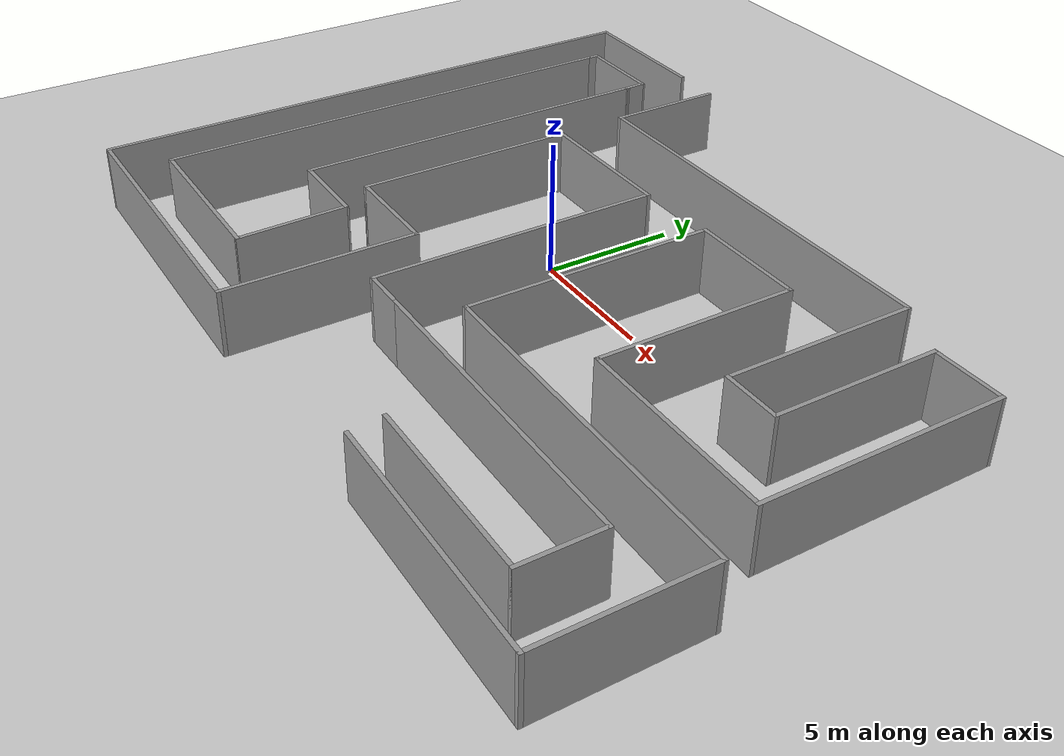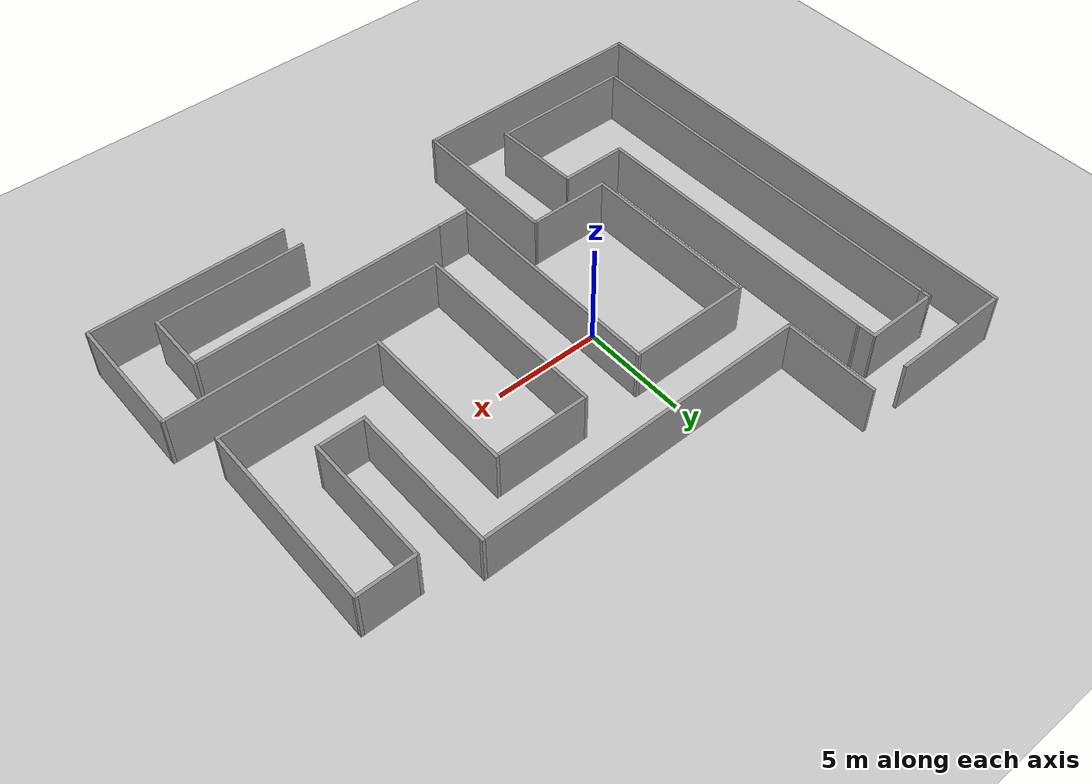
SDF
<sdf version="1.6">
 <world name="default">
  <light name="sun" type="directional">
   <pose>0 0 10 0 -0 0</pose>
   <diffuse>0.8 0.8 0.8 1</diffuse>
   <specular>0.2 0.2 0.2 1</specular>
   <attenuation>
    <range>1000</range>
    <constant>0.9</constant>
    <linear>0.01</linear>
    <quadratic>0.001</quadratic>
   </attenuation>
   <direction>-0.5 0.1 -0.9</direction>
  </light>
  <model name="ground_plane">
   <static>1</static>
   <link name="link">
    <collision name="collision">
     <geometry><plane><normal>0 0 1</normal><size>100 100</size></plane></geometry>
     <surface>
      <contact><collide_bitmask>65535</collide_bitmask></contact>
      <friction><ode><mu>100</mu><mu2>50</mu2></ode></friction>
     </surface>
    </collision>
    <visual name="visual">
     <cast_shadows>0</cast_shadows>
     <geometry><plane><normal>0 0 1</normal><size>100 100</size></plane></geometry>
     <material>
      <script><uri>file://media/materials/scripts/gazebo.material</uri><name>Gazebo/Grey</name></script>
     </material>
    </visual>
   </link>
  </model>
  <gravity>0 0 -9.8</gravity>
  <magnetic_field>6e-06 2.3e-05 -4.2e-05</magnetic_field>
  <atmosphere type="adiabatic"/>
  <physics name="default_physics" default="0" type="ode">
   <max_step_size>0.001</max_step_size>
   <real_time_factor>1</real_time_factor>
   <real_time_update_rate>1000</real_time_update_rate>
  </physics>
  <scene><ambient>0.4 0.4 0.4 1</ambient><background>0.7 0.7 0.7 1</background><shadows>1</shadows></scene>
  <audio><device>default</device></audio>
  <spherical_coordinates>
   <surface_model>EARTH_WGS84</surface_model>
   <latitude_deg>0</latitude_deg>
   <longitude_deg>0</longitude_deg>
   <elevation>0</elevation>
   <heading_deg>0</heading_deg>
  </spherical_coordinates>
  <model name="maze2">
   <pose>2.16194 -0.643402 0 0 -0 0</pose>
   <link name="Wall_0">
    <collision name="Wall_0_Collision">
     <geometry><box><size>9.25 0.15 2.5</size></box></geometry>
     <pose>0 0 1.25 0 -0 0</pose>
    </collision>
    <visual name="Wall_0_Visual">
     <pose>0 0 1.25 0 -0 0</pose>
     <geometry><box><size>9.25 0.15 2.5</size></box></geometry>
     <material>
      <script><uri>file://media/materials/scripts/gazebo.material</uri><name>Gazebo/Grey</name></script>
      <ambient>1 1 1 1</ambient>
     </material>
     <meta><layer>0</layer></meta>
    </visual>
    <pose>9.91895 -10.8043 0 0 -0 0</pose>
   </link>
   <link name="Wall_1">
    <collision name="Wall_1_Collision">
     <geometry><box><size>6 0.15 2.5</size></box></geometry>
     <pose>0 0 1.25 0 -0 0</pose>
    </collision>
    <visual name="Wall_1_Visual">
     <pose>0 0 1.25 0 -0 0</pose>
     <geometry><box><size>6 0.15 2.5</size></box></geometry>
     <material>
      <script><uri>file://media/materials/scripts/gazebo.material</uri><name>Gazebo/Grey</name></script>
      <ambient>1 1 1 1</ambient>
     </material>
     <meta><layer>0</layer></meta>
    </visual>
    <pose>14.4689 -7.87931 0 0 -0 1.5708</pose>
   </link>
   <link name="Wall_10">
    <collision name="Wall_10_Collision">
     <geometry><box><size>2.25 0.15 2.5</size></box></geometry>
     <pose>0 0 1.25 0 -0 0</pose>
    </collision>
    <visual name="Wall_10_Visual">
     <pose>0 0 1.25 0 -0 0</pose>
     <geometry><box><size>2.25 0.15 2.5</size></box></geometry>
     <material>
      <script><uri>file://media/materials/scripts/gazebo.material</uri><name>Gazebo/Grey</name></script>
      <ambient>1 1 1 1</ambient>
     </material>
     <meta><layer>0</layer></meta>
    </visual>
    <pose>9.66895 -0.204305 0 0 -0 3.14159</pose>
   </link>
   <link name="Wall_11">
    <collision name="Wall_11_Collision">
     <geometry><box><size>7.25 0.15 2.5</size></box></geometry>
     <pose>0 0 1.25 0 -0 0</pose>
    </collision>
    <visual name="Wall_11_Visual">
     <pose>0 0 1.25 0 -0 0</pose>
     <geometry><box><size>7.25 0.15 2.5</size></box></geometry>
     <material>
      <script><uri>file://media/materials/scripts/gazebo.material</uri><name>Gazebo/Grey</name></script>
      <ambient>1 1 1 1</ambient>
     </material>
     <meta><layer>0</layer></meta>
    </visual>
    <pose>8.61895 3.3457 0 0 -0 1.5708</pose>
   </link>
   <link name="Wall_12">
    <collision name="Wall_12_Collision">
     <geometry><box><size>15.75 0.15 2.5</size></box></geometry>
     <pose>0 0 1.25 0 -0 0</pose>
    </collision>
    <visual name="Wall_12_Visual">
     <pose>0 0 1.25 0 -0 0</pose>
     <geometry><box><size>15.75 0.15 2.5</size></box></geometry>
     <material>
      <script><uri>file://media/materials/scripts/gazebo.material</uri><name>Gazebo/Grey</name></script>
      <ambient>1 1 1 1</ambient>
     </material>
     <meta><layer>0</layer></meta>
    </visual>
    <pose>0.81895 6.89569 0 0 -0 3.14159</pose>
   </link>
   <link name="Wall_13">
    <collision name="Wall_13_Collision">
     <geometry><box><size>4.5 0.15 2.5</size></box></geometry>
     <pose>0 0 1.25 0 -0 0</pose>
    </collision>
    <visual name="Wall_13_Visual">
     <pose>0 0 1.25 0 -0 0</pose>
     <geometry><box><size>4.5 0.15 2.5</size></box></geometry>
     <material>
      <script><uri>file://media/materials/scripts/gazebo.material</uri><name>Gazebo/Grey</name></script>
      <ambient>1 1 1 1</ambient>
     </material>
     <meta><layer>0</layer></meta>
    </visual>
    <pose>-6.98105 9.0707 0 0 -0 1.5708</pose>
   </link>
   <link name="Wall_15">
    <collision name="Wall_15_Collision">
     <geometry><box><size>7 0.15 2.5</size></box></geometry>
     <pose>0 0 1.25 0 -0 0</pose>
    </collision>
    <visual name="Wall_15_Visual">
     <pose>0 0 1.25 0 -0 0</pose>
     <geometry><box><size>7 0.15 2.5</size></box></geometry>
     <material>
      <script><uri>file://media/materials/scripts/gazebo.material</uri><name>Gazebo/Grey</name></script>
      <ambient>1 1 1 1</ambient>
     </material>
     <meta><layer>0</layer></meta>
    </visual>
    <pose>8.65605 -9.55 0 0 -0 0</pose>
   </link>
   <link name="Wall_16">
    <collision name="Wall_16_Collision">
     <geometry><box><size>3 0.15 2.5</size></box></geometry>
     <pose>0 0 1.25 0 -0 0</pose>
    </collision>
    <visual name="Wall_16_Visual">
     <pose>0 0 1.25 0 -0 0</pose>
     <geometry><box><size>3 0.15 2.5</size></box></geometry>
     <material>
      <script><uri>file://media/materials/scripts/gazebo.material</uri><name>Gazebo/Grey</name></script>
      <ambient>1 1 1 1</ambient>
     </material>
     <meta><layer>0</layer></meta>
    </visual>
    <pose>12.0811 -8.125 0 0 -0 1.5708</pose>
   </link>
   <link name="Wall_17">
    <collision name="Wall_17_Collision">
     <geometry><box><size>12 0.15 2.5</size></box></geometry>
     <pose>0 0 1.25 0 -0 0</pose>
    </collision>
    <visual name="Wall_17_Visual">
     <pose>0 0 1.25 0 -0 0</pose>
     <geometry><box><size>12 0.15 2.5</size></box></geometry>
     <material>
      <script><uri>file://media/materials/scripts/gazebo.material</uri><name>Gazebo/Grey</name></script>
      <ambient>1 1 1 1</ambient>
     </material>
     <meta><layer>0</layer></meta>
    </visual>
    <pose>6.15605 -6.7 0 0 -0 3.14159</pose>
   </link>
   <link name="Wall_18">
    <collision name="Wall_18_Collision">
     <geometry><box><size>1.75 0.15 2.5</size></box></geometry>
     <pose>0 0 1.25 0 -0 0</pose>
    </collision>
    <visual name="Wall_18_Visual">
     <pose>0 0 1.25 0 -0 0</pose>
     <geometry><box><size>1.75 0.15 2.5</size></box></geometry>
     <material>
      <script><uri>file://media/materials/scripts/gazebo.material</uri><name>Gazebo/Grey</name></script>
      <ambient>1 1 1 1</ambient>
     </material>
     <meta><layer>0</layer></meta>
    </visual>
    <pose>-0.56895 -6.7 0 0 -0 3.14159</pose>
   </link>
   <link name="Wall_19">
    <collision name="Wall_19_Collision">
     <geometry><box><size>11 0.15 2.5</size></box></geometry>
     <pose>0 0 1.25 0 -0 0</pose>
    </collision>
    <visual name="Wall_19_Visual">
     <pose>0 0 1.25 0 -0 0</pose>
     <geometry><box><size>11 0.15 2.5</size></box></geometry>
     <material>
      <script><uri>file://media/materials/scripts/gazebo.material</uri><name>Gazebo/Grey</name></script>
      <ambient>1 1 1 1</ambient>
     </material>
     <meta><layer>0</layer></meta>
    </visual>
    <pose>-1.36895 -1.275 0 0 -0 1.5708</pose>
   </link>
   <link name="Wall_2">
    <collision name="Wall_2_Collision">
     <geometry><box><size>13 0.15 2.5</size></box></geometry>
     <pose>0 0 1.25 0 -0 0</pose>
    </collision>
    <visual name="Wall_2_Visual">
     <pose>0 0 1.25 0 -0 0</pose>
     <geometry><box><size>13 0.15 2.5</size></box></geometry>
     <material>
      <script><uri>file://media/materials/scripts/gazebo.material</uri><name>Gazebo/Grey</name></script>
      <ambient>1 1 1 1</ambient>
     </material>
     <meta><layer>0</layer></meta>
    </visual>
    <pose>8.04395 -4.9543 0 0 -0 3.14159</pose>
   </link>
   <link name="Wall_20">
    <collision name="Wall_20_Collision">
     <geometry><box><size>5.75 0.15 2.5</size></box></geometry>
     <pose>0 0 1.25 0 -0 0</pose>
    </collision>
    <visual name="Wall_20_Visual">
     <pose>0 0 1.25 0 -0 0</pose>
     <geometry><box><size>5.75 0.15 2.5</size></box></geometry>
     <material>
      <script><uri>file://media/materials/scripts/gazebo.material</uri><name>Gazebo/Grey</name></script>
      <ambient>1 1 1 1</ambient>
     </material>
     <meta><layer>0</layer></meta>
    </visual>
    <pose>-4.16895 4.15 0 0 -0 3.14159</pose>
   </link>
   <link name="Wall_21">
    <collision name="Wall_21_Collision">
     <geometry><box><size>8.5 0.15 2.5</size></box></geometry>
     <pose>0 0 1.25 0 -0 0</pose>
    </collision>
    <visual name="Wall_21_Visual">
     <pose>0 0 1.25 0 -0 0</pose>
     <geometry><box><size>8.5 0.15 2.5</size></box></geometry>
     <material>
      <script><uri>file://media/materials/scripts/gazebo.material</uri><name>Gazebo/Grey</name></script>
      <ambient>1 1 1 1</ambient>
     </material>
     <meta><layer>0</layer></meta>
    </visual>
    <pose>-6.96895 -0.025 0 0 -0 -1.5708</pose>
   </link>
   <link name="Wall_22">
    <collision name="Wall_22_Collision">
     <geometry><box><size>4 0.15 2.5</size></box></geometry>
     <pose>0 0 1.25 0 -0 0</pose>
    </collision>
    <visual name="Wall_22_Visual">
     <pose>0 0 1.25 0 -0 0</pose>
     <geometry><box><size>4 0.15 2.5</size></box></geometry>
     <material>
      <script><uri>file://media/materials/scripts/gazebo.material</uri><name>Gazebo/Grey</name></script>
      <ambient>1 1 1 1</ambient>
     </material>
     <meta><layer>0</layer></meta>
    </visual>
    <pose>-5.04395 -4.2 0 0 -0 0</pose>
   </link>
   <link name="Wall_23">
    <collision name="Wall_23_Collision">
     <geometry><box><size>7.25 0.15 2.5</size></box></geometry>
     <pose>0 0 1.25 0 -0 0</pose>
    </collision>
    <visual name="Wall_23_Visual">
     <pose>0 0 1.25 0 -0 0</pose>
     <geometry><box><size>7.25 0.15 2.5</size></box></geometry>
     <material>
      <script><uri>file://media/materials/scripts/gazebo.material</uri><name>Gazebo/Grey</name></script>
      <ambient>1 1 1 1</ambient>
     </material>
     <meta><layer>0</layer></meta>
    </visual>
    <pose>-3.11895 -7.75 0 0 -0 -1.5708</pose>
   </link>
   <link name="Wall_24">
    <collision name="Wall_24_Collision">
     <geometry><box><size>11.5 0.15 2.5</size></box></geometry>
     <pose>0 0 1.25 0 -0 0</pose>
    </collision>
    <visual name="Wall_24_Visual">
     <pose>0 0 1.25 0 -0 0</pose>
     <geometry><box><size>11.5 0.15 2.5</size></box></geometry>
     <material>
      <script><uri>file://media/materials/scripts/gazebo.material</uri><name>Gazebo/Grey</name></script>
      <ambient>1 1 1 1</ambient>
     </material>
     <meta><layer>0</layer></meta>
    </visual>
    <pose>-8.79395 -11.3 0 0 -0 3.14159</pose>
   </link>
   <link name="Wall_25">
    <collision name="Wall_25_Collision">
     <geometry><box><size>22.75 0.15 2.5</size></box></geometry>
     <pose>0 0 1.25 0 -0 0</pose>
    </collision>
    <visual name="Wall_25_Visual">
     <pose>0 0 1.25 0 -0 0</pose>
     <geometry><box><size>22.75 0.15 2.5</size></box></geometry>
     <material>
      <script><uri>file://media/materials/scripts/gazebo.material</uri><name>Gazebo/Grey</name></script>
      <ambient>1 1 1 1</ambient>
     </material>
     <meta><layer>0</layer></meta>
    </visual>
    <pose>-14.4689 0 0 0 -0 1.5708</pose>
   </link>
   <link name="Wall_26">
    <collision name="Wall_26_Collision">
     <geometry><box><size>5.75 0.15 2.5</size></box></geometry>
     <pose>0 0 1.25 0 -0 0</pose>
    </collision>
    <visual name="Wall_26_Visual">
     <pose>0 0 1.25 0 -0 0</pose>
     <geometry><box><size>5.75 0.15 2.5</size></box></geometry>
     <material>
      <script><uri>file://media/materials/scripts/gazebo.material</uri><name>Gazebo/Grey</name></script>
      <ambient>1 1 1 1</ambient>
     </material>
     <meta><layer>0</layer></meta>
    </visual>
    <pose>-11.6689 11.3 0 0 -0 0</pose>
   </link>
   <link name="Wall_28">
    <collision name="Wall_28_Collision">
     <geometry><box><size>18.8152 0.15 2.5</size></box></geometry>
     <pose>0 0 1.25 0 -0 0</pose>
    </collision>
    <visual name="Wall_28_Visual">
     <pose>0 0 1.25 0 -0 0</pose>
     <geometry><box><size>18.8152 0.15 2.5</size></box></geometry>
     <material>
      <script><uri>file://media/materials/scripts/gazebo.material</uri><name>Gazebo/Grey</name></script>
      <ambient>1 1 1 1</ambient>
     </material>
     <meta><layer>0</layer></meta>
    </visual>
    <pose>-12.497 -0.2097 0 0 -0 1.5708</pose>
   </link>
   <link name="Wall_3">
    <collision name="Wall_3_Collision">
     <geometry><box><size>9.5 0.15 2.5</size></box></geometry>
     <pose>0 0 1.25 0 -0 0</pose>
    </collision>
    <visual name="Wall_3_Visual">
     <pose>0 0 1.25 0 -0 0</pose>
     <geometry><box><size>9.5 0.15 2.5</size></box></geometry>
     <material>
      <script><uri>file://media/materials/scripts/gazebo.material</uri><name>Gazebo/Grey</name></script>
      <ambient>1 1 1 1</ambient>
     </material>
     <meta><layer>0</layer></meta>
    </visual>
    <pose>1.61895 -0.279305 0 0 -0 1.5708</pose>
   </link>
   <link name="Wall_30">
    <collision name="Wall_30_Collision">
     <geometry><box><size>14.2977 0.15 2.5</size></box></geometry>
     <pose>0 0 1.25 0 -0 0</pose>
    </collision>
    <visual name="Wall_30_Visual">
     <pose>0 0 1.25 0 -0 0</pose>
     <geometry><box><size>14.2977 0.15 2.5</size></box></geometry>
     <material>
      <script><uri>file://media/materials/scripts/gazebo.material</uri><name>Gazebo/Grey</name></script>
      <ambient>1 1 1 1</ambient>
     </material>
     <meta><layer>0</layer></meta>
    </visual>
    <pose>-9.12948 1.62928 0 0 -0 -1.5708</pose>
   </link>
   <link name="Wall_33">
    <collision name="Wall_33_Collision">
     <geometry><box><size>3.25 0.15 2.5</size></box></geometry>
     <pose>0 0 1.25 0 -0 0</pose>
    </collision>
    <visual name="Wall_33_Visual">
     <pose>0 0 1.25 0 -0 0</pose>
     <geometry><box><size>3.25 0.15 2.5</size></box></geometry>
     <material>
      <script><uri>file://media/materials/scripts/gazebo.material</uri><name>Gazebo/Grey</name></script>
      <ambient>1 1 1 1</ambient>
     </material>
     <meta><layer>0</layer></meta>
    </visual>
    <pose>-7.57948 -5.44458 0 0 -0 0</pose>
   </link>
   <link name="Wall_34">
    <collision name="Wall_34_Collision">
     <geometry><box><size>4.25134 0.15 2.5</size></box></geometry>
     <pose>0 0 1.25 0 -0 0</pose>
    </collision>
    <visual name="Wall_34_Visual">
     <pose>0 0 1.25 0 -0 0</pose>
     <geometry><box><size>4.25134 0.15 2.5</size></box></geometry>
     <material>
      <script><uri>file://media/materials/scripts/gazebo.material</uri><name>Gazebo/Grey</name></script>
      <ambient>1 1 1 1</ambient>
     </material>
     <meta><layer>0</layer></meta>
    </visual>
    <pose>-5.96827 -7.49458 0 0 -0 -1.54094</pose>
   </link>
   <link name="Wall_35">
    <collision name="Wall_35_Collision">
     <geometry><box><size>6.75 0.15 2.5</size></box></geometry>
     <pose>0 0 1.25 0 -0 0</pose>
    </collision>
    <visual name="Wall_35_Visual">
     <pose>0 0 1.25 0 -0 0</pose>
     <geometry><box><size>6.75 0.15 2.5</size></box></geometry>
     <material>
      <script><uri>file://media/materials/scripts/gazebo.material</uri><name>Gazebo/Grey</name></script>
      <ambient>1 1 1 1</ambient>
     </material>
     <meta><layer>0</layer></meta>
    </visual>
    <pose>-9.22454 -9.54458 0 0 -0 3.14159</pose>
   </link>
   <link name="Wall_37">
    <collision name="Wall_37_Collision">
     <geometry><box><size>0.5 0.15 2.5</size></box></geometry>
     <pose>0 0 1.25 0 -0 0</pose>
    </collision>
    <visual name="Wall_37_Visual">
     <pose>0 0 1.25 0 -0 0</pose>
     <geometry><box><size>0.5 0.15 2.5</size></box></geometry>
     <material>
      <script><uri>file://media/materials/scripts/gazebo.material</uri><name>Gazebo/Grey</name></script>
      <ambient>1 1 1 1</ambient>
     </material>
     <meta><layer>0</layer></meta>
    </visual>
    <pose>-12.497 9.29791 0 0 -0 1.5708</pose>
   </link>
   <link name="Wall_38">
    <collision name="Wall_38_Collision">
     <geometry><box><size>3.5 0.15 2.5</size></box></geometry>
     <pose>0 0 1.25 0 -0 0</pose>
    </collision>
    <visual name="Wall_38_Visual">
     <pose>0 0 1.25 0 -0 0</pose>
     <geometry><box><size>3.5 0.15 2.5</size></box></geometry>
     <material>
      <script><uri>file://media/materials/scripts/gazebo.material</uri><name>Gazebo/Grey</name></script>
      <ambient>1 1 1 1</ambient>
     </material>
     <meta><layer>0</layer></meta>
    </visual>
    <pose>-10.822 9.47291 0 0 -0 0</pose>
   </link>
   <link name="Wall_39">
    <collision name="Wall_39_Collision">
     <geometry><box><size>0.91996 0.15 2.5</size></box></geometry>
     <pose>0 0 1.25 0 -0 0</pose>
    </collision>
    <visual name="Wall_39_Visual">
     <pose>0 0 1.25 0 -0 0</pose>
     <geometry><box><size>0.91996 0.15 2.5</size></box></geometry>
     <material>
      <script><uri>file://media/materials/scripts/gazebo.material</uri><name>Gazebo/Grey</name></script>
      <ambient>1 1 1 1</ambient>
     </material>
     <meta><layer>0</layer></meta>
    </visual>
    <pose>-9.13823 9.08803 0 0 -0 -1.54808</pose>
   </link>
   <link name="Wall_4">
    <collision name="Wall_4_Collision">
     <geometry><box><size>4.5 0.15 2.5</size></box></geometry>
     <pose>0 0 1.25 0 -0 0</pose>
    </collision>
    <visual name="Wall_4_Visual">
     <pose>0 0 1.25 0 -0 0</pose>
     <geometry><box><size>4.5 0.15 2.5</size></box></geometry>
     <material>
      <script><uri>file://media/materials/scripts/gazebo.material</uri><name>Gazebo/Grey</name></script>
      <ambient>1 1 1 1</ambient>
     </material>
     <meta><layer>0</layer></meta>
    </visual>
    <pose>3.79395 4.39569 0 0 -0 0</pose>
   </link>
   <link name="Wall_5">
    <collision name="Wall_5_Collision">
     <geometry><box><size>7.5 0.15 2.5</size></box></geometry>
     <pose>0 0 1.25 0 -0 0</pose>
    </collision>
    <visual name="Wall_5_Visual">
     <pose>0 0 1.25 0 -0 0</pose>
     <geometry><box><size>7.5 0.15 2.5</size></box></geometry>
     <material>
      <script><uri>file://media/materials/scripts/gazebo.material</uri><name>Gazebo/Grey</name></script>
      <ambient>1 1 1 1</ambient>
     </material>
     <meta><layer>0</layer></meta>
    </visual>
    <pose>5.96895 0.720695 0 0 -0 -1.5708</pose>
   </link>
   <link name="Wall_6">
    <collision name="Wall_6_Collision">
     <geometry><box><size>7.5 0.15 2.5</size></box></geometry>
     <pose>0 0 1.25 0 -0 0</pose>
    </collision>
    <visual name="Wall_6_Visual">
     <pose>0 0 1.25 0 -0 0</pose>
     <geometry><box><size>7.5 0.15 2.5</size></box></geometry>
     <material>
      <script><uri>file://media/materials/scripts/gazebo.material</uri><name>Gazebo/Grey</name></script>
      <ambient>1 1 1 1</ambient>
     </material>
     <meta><layer>0</layer></meta>
    </visual>
    <pose>9.64395 -2.95431 0 0 -0 0</pose>
   </link>
   <link name="Wall_7">
    <collision name="Wall_7_Collision">
     <geometry><box><size>9 0.15 2.5</size></box></geometry>
     <pose>0 0 1.25 0 -0 0</pose>
    </collision>
    <visual name="Wall_7_Visual">
     <pose>0 0 1.25 0 -0 0</pose>
     <geometry><box><size>9 0.15 2.5</size></box></geometry>
     <material>
      <script><uri>file://media/materials/scripts/gazebo.material</uri><name>Gazebo/Grey</name></script>
      <ambient>1 1 1 1</ambient>
     </material>
     <meta><layer>0</layer></meta>
    </visual>
    <pose>13.3189 1.4707 0 0 -0 1.5708</pose>
   </link>
   <link name="Wall_8">
    <collision name="Wall_8_Collision">
     <geometry><box><size>2.75 0.15 2.5</size></box></geometry>
     <pose>0 0 1.25 0 -0 0</pose>
    </collision>
    <visual name="Wall_8_Visual">
     <pose>0 0 1.25 0 -0 0</pose>
     <geometry><box><size>2.75 0.15 2.5</size></box></geometry>
     <material>
      <script><uri>file://media/materials/scripts/gazebo.material</uri><name>Gazebo/Grey</name></script>
      <ambient>1 1 1 1</ambient>
     </material>
     <meta><layer>0</layer></meta>
    </visual>
    <pose>12.019 5.89569 0 0 -0 3.14159</pose>
   </link>
   <link name="Wall_9">
    <collision name="Wall_9_Collision">
     <geometry><box><size>6.25 0.15 2.5</size></box></geometry>
     <pose>0 0 1.25 0 -0 0</pose>
    </collision>
    <visual name="Wall_9_Visual">
     <pose>0 0 1.25 0 -0 0</pose>
     <geometry><box><size>6.25 0.15 2.5</size></box></geometry>
     <material>
      <script><uri>file://media/materials/scripts/gazebo.material</uri><name>Gazebo/Grey</name></script>
      <ambient>1 1 1 1</ambient>
     </material>
     <meta><layer>0</layer></meta>
    </visual>
    <pose>10.7189 2.8457 0 0 -0 -1.5708</pose>
   </link>
   <static>1</static>
  </model>
 </world>
</sdf>
